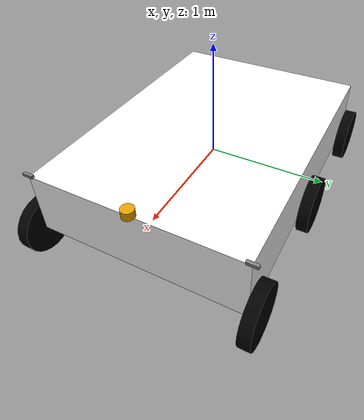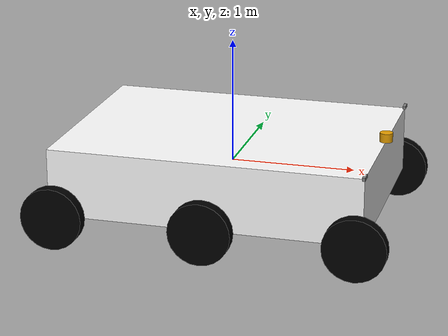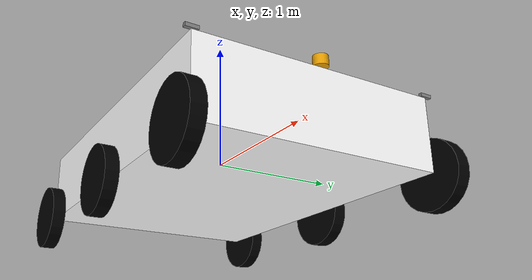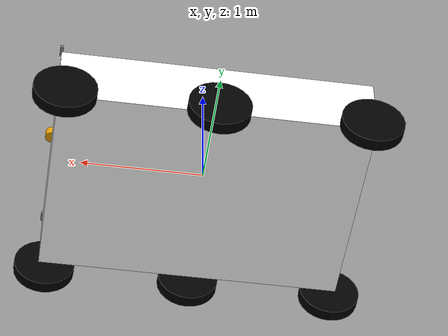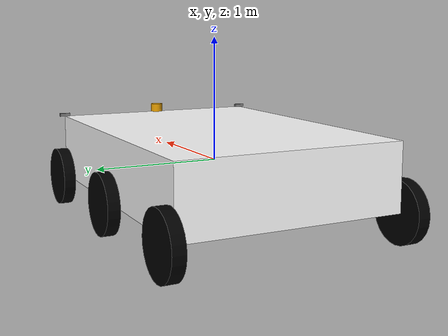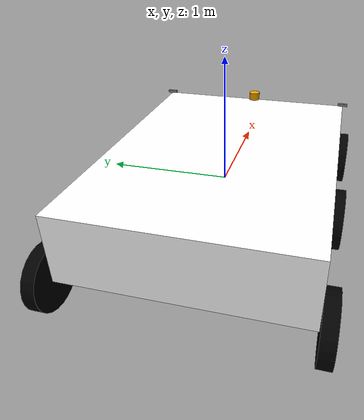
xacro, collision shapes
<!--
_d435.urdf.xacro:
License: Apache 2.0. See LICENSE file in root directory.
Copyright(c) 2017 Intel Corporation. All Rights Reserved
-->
<?xml version="1.0"?>
<robot xmlns:xacro="http://www.ros.org/wiki/xacro" name="delybot">

    <!-- BOX PROPERTIES -->
    <xacro:property name="box_width" value="1.8" />    <xacro:property name="box_depth" value="2.5" />
    <xacro:property name="box_height" value="0.54" />
    <xacro:property name="box_mass" value="42" />       <!-- original: 42 kg-->

    <!-- WHEEL PROPERTIES -->
    <xacro:property name="wheel_radius" value="0.25" />
    <xacro:property name="wheel_width" value="0.1" />
    <xacro:property name="wheel_offset_from_bottom_chassis" value="0.0" />
    <xacro:property name="wheel_offset_from_front_chassis" value="0.05" />
    <xacro:property name="wheel_offset_from_back_chassis" value="0.05" />
    <xacro:property name="wheel_mass" value="0.5" />    <!-- original: 0.5 kg-->

    <!-- MACRO DEFINITION -->

    <!-- DEFAULT INERTIA MACRO -->
    <xacro:macro name="default_inertial" params="mass">
        <inertial>
            <mass value="${mass}" />
            <inertia ixx="1.0" ixy="0.0" ixz="0.0" iyy="1.0" iyz="0.0" izz="1.0" />
        </inertial>
    </xacro:macro>

    <xacro:macro name="box_inertial" params="x y z mass">
        <inertial>
            <mass value="${mass}" />
            <origin xyz="0 0 0" />
            <inertia ixx="${0.0833333 * mass * (y*y + z*z)}" ixy="0.0" ixz="0.0"
                    iyy="${0.0833333 * mass * (x*x + z*z)}" iyz="0.0"
                    izz="${0.0833333 * mass * (x*x + y*y)}" />
        </inertial>
    </xacro:macro>

    <xacro:macro name="cylinder_inertial" params="radius length mass">
        <inertial>
        <mass value="${mass}" />
        <origin xyz="0 0 0"/>
        <inertia ixx="${0.0833333 * mass * (3 * radius * radius + length * length)}" ixy="0.0" ixz="0.0"
                iyy="${0.0833333 * mass * (3 * radius * radius + length * length)}" iyz="0.0"
                izz="${0.5 * mass * radius * radius}" />
        </inertial>

    </xacro:macro>

    <!-- WHEEL MACRO -->
    <xacro:macro name="wheel_macro" params="position x y actuated:=false">
        <link name="${position}_wheel">
            <visual>
                <material name="black"/>
                <origin xyz="0.0 0.0 0.0" rpy="1.57075 0.0 0.0"/>
                <geometry>
                    <cylinder radius="${wheel_radius}" length="${wheel_width}"/>
                </geometry>
            </visual>
            <collision>
                <origin xyz="0.0 0.0 0.0" rpy="1.57075 0.0 0.0"/>
                <geometry>
                    <cylinder radius="${wheel_radius}" length="${wheel_width}"/>
                </geometry>
            </collision>
            <xacro:cylinder_inertial radius="${wheel_radius}" length="${wheel_width}" mass="${wheel_mass}"/>
        </link>

        <gazebo reference="${position}_wheel">
            <kp value="1000000.0" />
            <kd value="1.0" />
            <selfCollide>true</selfCollide>
        </gazebo>

        <!-- JOINT DEFINITION -->

        <joint name="${position}_wheel_joint" type="continuous">
            <origin xyz="${x} ${y} -${box_height/2 - wheel_offset_from_bottom_chassis}" rpy="0.0 0.0 0.0"/>
            <parent link="base_box"/>
            <child link="${position}_wheel"/>
            <axis xyz="0.0 1.0 0.0"/>
        </joint>

        <gazebo reference="${position}_wheel">
            <material>Gazebo/FlatBlack</material>
        </gazebo>

        <!-- TRASMISSION DEFINITION -->

        <transmission name="${position}_wheel_joint_tran" type="SimpleTransmission">
            <type>transmission_interface/SimpleTransmission</type>
            <joint name="${position}_wheel_joint">
                <hardwareInterface>hardware_interface/VelocityJointInterface</hardwareInterface>
            </joint>
            <xacro:if value="true">
                <actuator name="${position}_wheel_joint_motor">
                    <hardwareInterface>hardware_interface/EffortJointInterface</hardwareInterface>
                    <mechanicalReduction>1</mechanicalReduction>
                </actuator>
            </xacro:if>
        </transmission>

    </xacro:macro>

    <!-- MATERIAL DEFINITIONS -->

    <material name="black">
        <color rgba="0.0 0.0 0.0 1.0"/>
    </material>

    <material name="white">
        <color rgba="1.0 1.0 1.0 1.0"/>
    </material>

    <!-- BASE LINK -->

    <link name="base_link"/>

    <!-- BASE BOX -->

    <link name="base_box">
        <visual>
            <material name="white"/>
            <geometry>
                <box size="${box_depth} ${box_width} ${box_height}"/>
            </geometry>
        </visual>
        <collision>
            <geometry>
                <box size="${box_depth} ${box_width} ${box_height}"/>
            </geometry>
        </collision>
        <xacro:box_inertial x="${box_depth}" y="${box_width}" z="${box_height}" mass="${box_mass}"/>
    </link>

    <gazebo reference="base_box">
        <material>Gazebo/Orange</material>
    </gazebo>

    <!-- BOX - BASE JOINT -->

    <joint name="box_to_base_link_joint" type="fixed">
        <parent link="base_link"/>
        <child link="base_box"/>
    </joint>

    <!-- LEFT FRONT WHEEL -->

    <xacro:wheel_macro position="left_front" x="${box_depth/2 - wheel_offset_from_front_chassis}" y="${box_width/2 + wheel_width/2}" actuated="true"/>

    <!-- LEFT CENTER WHEEL -->

    <xacro:wheel_macro position="left_center" x="0" y="${box_width/2 + wheel_width/2}"/>

    <!-- LEFT BACK WHEEL -->

    <xacro:wheel_macro position="left_back" x="${-box_depth/2 + wheel_offset_from_front_chassis}" y="${box_width/2 + wheel_width/2}" actuated="true"/>

    <!-- RIGHT FRONT WHEEL -->

    <xacro:wheel_macro position="right_front" x="${box_depth/2 - wheel_offset_from_front_chassis}" y="${-box_width/2 - wheel_width/2}" actuated="true"/>

    <!-- RIGHT CENTER WHEEL -->

    <xacro:wheel_macro position="right_center" x="0" y="${-box_width/2 - wheel_width/2}"/>

    <!-- RIGHT BACK WHEEL -->

    <xacro:wheel_macro position="right_back" x="${-box_depth/2 + wheel_offset_from_front_chassis}" y="${-box_width/2 - wheel_width/2}" actuated="true"/>

    <!-- LIDAR SENSOR -->

   	<xacro:include filename="$(find delybot_description)/urdf/VLP-16.urdf.xacro"/>
  <xacro:VLP-16 parent="base_link" name="velodyne" topic="/velodyne_points" hz="10" samples="440" gpu="false">
    <origin xyz="1.25 0 0.27" rpy="0 0 0" />  </xacro:VLP-16>
    <!-- IMU SENSOR -->

    <!-- GAZEBO PLUGIN -->

    <!-- ROS CONTROL PLUGIN -->

    <gazebo>
        <plugin name="gazebo_ros_control" filename="libgazebo_ros_control.so">
            <robotNamespace>/</robotNamespace>
        </plugin>
    </gazebo>

    <!-- LIDAR SENSOR PLUGIN -->

<xacro:include filename="$(find delybot_description)/urdf/_d435.urdf.xacro" />
<xacro:sensor_d435 name="camera" topics_ns="camera" parent="base_link" publish_pointcloud="true">
    <origin xyz="1.25 0.9 0.27" rpy="0 0 0" />  </xacro:sensor_d435>

    <xacro:include filename="$(find delybot_description)/urdf/_d435.urdf.xacro" />
<xacro:sensor_d435 name="camera1" topics_ns="camera1" parent="base_link" publish_pointcloud="true">
    <origin xyz="1.25 -0.9 0.27" rpy="0 0 0" />  </xacro:sensor_d435>

    <!-- IMU PLUGIN -->

<plugin name="joint_state_publisher" filename="libgazebo_ros_joint_state_publisher.so">
  <jointName>left_front_wheel_joint, left_center_wheel_joint, left_back_wheel_joint , right_front_wheel_joint , right_center_wheel_joint,right_back_wheel_joint</jointName>
</plugin>

</robot>

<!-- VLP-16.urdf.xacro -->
<robot xmlns:xacro="http://www.ros.org/wiki/xacro" name="VLP-16">
  <xacro:property name="M_PI" value="1.55" />
  <xacro:macro name="VLP-16" params="*origin parent:=base_link name:=velodyne topic:=/velodyne_points hz:=10 lasers:=16 samples:=1875 collision_range:=0.3 min_range:=0.9 max_range:=130.0 noise:=0.008 min_angle:=-${M_PI} max_angle:=${M_PI} gpu:=false">

    <joint name="${name}_base_mount_joint" type="fixed">
      <xacro:insert_block name="origin" />
      <parent link="${parent}"/>
      <child link="${name}_base_link"/>
    </joint>

    <link name="${name}_base_link">
      <inertial>
        <mass value="0.83"/>
        <origin xyz="0 0 0.03585"/>
        <inertia ixx="${(0.83 * (3.0*0.0516*0.0516 + 0.0717*0.0717)) / 12.0}" ixy="0" ixz="0"
          iyy="${(0.83 * (3.0*0.0516*0.0516 + 0.0717*0.0717)) / 12.0}" iyz="0"
          izz="${0.5 * 0.83 * (0.0516*0.0516)}"/>
      </inertial>
      <visual>
        <geometry>
          <mesh filename="package://velodyne_description/meshes/VLP16_base_1.dae" />
        </geometry>
      </visual>
      <visual>
        <geometry>
          <mesh filename="package://velodyne_description/meshes/VLP16_base_2.dae" />
        </geometry>
      </visual>
      <collision>
        <origin rpy="0 0 0" xyz="0 0 0.03585"/>
        <geometry>
          <cylinder radius="0.0516" length="0.0717"/>
        </geometry>
      </collision>
    </link>

    <joint name="${name}_base_scan_joint" type="fixed" >
      <origin xyz="0 0 0.0377" rpy="0 0 0" />
      <parent link="${name}_base_link" />
      <child link="${name}"/>
    </joint>

    <link name="${name}">
      <inertial>
        <mass value="0.01"/>
        <origin xyz="0 0 0"/>
        <inertia ixx="1e-7" ixy="0" ixz="0" iyy="1e-7" iyz="0" izz="1e-7"/>
      </inertial>
      <visual>
        <origin xyz="0 0 -0.0377" />
        <geometry>
          <mesh filename="package://velodyne_description/meshes/VLP16_scan.dae" />
        </geometry>
      </visual>
    </link>

    <!-- Gazebo requires the velodyne_gazebo_plugins package -->
    <gazebo reference="${name}">
      <xacro:if value="${gpu}">
        <sensor type="gpu_ray" name="${name}-VLP16">
          <pose>0 0 0 0 0 0</pose>
          <visualize>false</visualize>
          <update_rate>${hz}</update_rate>
          <ray>
            <scan>
              <horizontal>
                <samples>${samples}</samples>
                <resolution>1</resolution>
                <min_angle>${min_angle}</min_angle>
                <max_angle>${max_angle}</max_angle>
              </horizontal>
              <vertical>
                <samples>${lasers}</samples>
                <resolution>1</resolution>
                <min_angle>-${15.0*M_PI/180.0}</min_angle>
                <max_angle> ${15.0*M_PI/180.0}</max_angle>
              </vertical>
            </scan>
            <range>
              <min>${collision_range}</min>
              <max>${max_range+1}</max>
              <resolution>0.001</resolution>
            </range>
            <noise>
              <type>gaussian</type>
              <mean>0.0</mean>
              <stddev>0.0</stddev>
            </noise>
          </ray>
          <plugin name="gazebo_ros_laser_controller" filename="libgazebo_ros_velodyne_gpu_laser.so">
            <topicName>${topic}</topicName>
            <frameName>${name}</frameName>
            <min_range>${min_range}</min_range>
            <max_range>${max_range}</max_range>
            <gaussianNoise>${noise}</gaussianNoise>
          </plugin>
        </sensor>
      </xacro:if>
      <xacro:unless value="${gpu}">
        <sensor type="ray" name="${name}-VLP16">
          <pose>0 0 0 0 0 0</pose>
          <visualize>false</visualize>
          <update_rate>${hz}</update_rate>
          <ray>
            <scan>
              <horizontal>
                <samples>${samples}</samples>
                <resolution>1</resolution>
                <min_angle>${min_angle}</min_angle>
                <max_angle>${max_angle}</max_angle>
              </horizontal>
              <vertical>
                <samples>${lasers}</samples>
                <resolution>1</resolution>
                <min_angle>-${15.0*M_PI/180.0}</min_angle>
                <max_angle> ${15.0*M_PI/180.0}</max_angle>
              </vertical>
            </scan>
            <range>
              <min>${collision_range}</min>
              <max>${max_range+1}</max>
              <resolution>0.001</resolution>
            </range>
            <noise>
              <type>gaussian</type>
              <mean>0.0</mean>
              <stddev>0.0</stddev>
            </noise>
          </ray>
          <plugin name="gazebo_ros_laser_controller" filename="libgazebo_ros_velodyne_laser.so">
            <topicName>${topic}</topicName>
            <frameName>${name}</frameName>
            <min_range>${min_range}</min_range>
            <max_range>${max_range}</max_range>
            <gaussianNoise>${noise}</gaussianNoise>
          </plugin>
        </sensor>
      </xacro:unless>
    </gazebo>

  </xacro:macro>
</robot>

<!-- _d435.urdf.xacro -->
<robot name="sensor_d435" xmlns:xacro="http://ros.org/wiki/xacro">
  <!--File includes-->
  <xacro:include filename="$(find delybot_description)/urdf/_d435.gazebo.xacro"/>

  <xacro:macro name="sensor_d435" params="name:=camera topics_ns:=camera parent *origin publish_pointcloud:=true">
    <xacro:property name="M_PI" value="3.1415926535897931" />

    <!-- The following values are approximate, and the camera node
     publishing TF values with actual calibrated camera extrinsic values -->
    <xacro:property name="d435_cam_depth_to_left_ir_offset" value="0.0"/>
    <xacro:property name="d435_cam_depth_to_right_ir_offset" value="-0.050"/>
    <xacro:property name="d435_cam_depth_to_color_offset" value="0.015"/>

    <!-- The following values model the aluminum peripherial case for the
    D435 camera, with the camera joint represented by the actual
    peripherial camera tripod mount -->
    <xacro:property name="d435_cam_width" value="0.090"/>
    <xacro:property name="d435_cam_height" value="0.025"/>
    <xacro:property name="d435_cam_depth" value="0.02505"/>
    <xacro:property name="d435_cam_mount_from_center_offset" value="0.0149"/>

    <!-- The following offset is relative the the physical D435 camera peripherial
    camera tripod mount -->
    <xacro:property name="d435_cam_depth_px" value="${d435_cam_mount_from_center_offset}"/>
    <xacro:property name="d435_cam_depth_py" value="0.0175"/>
    <xacro:property name="d435_cam_depth_pz" value="${d435_cam_height/2}"/>

    <material name="${name}_aluminum">
    <color rgba="0.5 0.5 0.5 1"/>
    </material>

    <!-- camera body, with origin at bottom screw mount -->
    <joint name="${name}_joint" type="fixed">
      <xacro:insert_block name="origin" />
      <parent link="${parent}"/>
      <child link="${name}_bottom_screw_frame" />
    </joint>
    <link name="${name}_bottom_screw_frame"/>

    <joint name="${name}_link_joint" type="fixed">
      <origin xyz="0 ${d435_cam_depth_py} ${d435_cam_depth_pz}" rpy="0 0 0"/>
      <parent link="${name}_bottom_screw_frame"/>
      <child link="${name}_link" />
    </joint>

    <link name="${name}_link">
      <visual>
      <origin xyz="${d435_cam_mount_from_center_offset} ${-d435_cam_depth_py} 0" rpy="${M_PI/2} 0 ${M_PI/2}"/>
        <geometry>
          <mesh filename="package://realsense2_description/meshes/d435.dae" />
        </geometry>
        <material name="${name}_aluminum"/>
      </visual>
      <collision>
        <origin xyz="0 ${-d435_cam_depth_py} 0" rpy="0 0 0"/>
        <geometry>
        <box size="${d435_cam_depth} ${d435_cam_width} ${d435_cam_height}"/>
        </geometry>
      </collision>
      <inertial>
        <!-- The following are not reliable values, and should not be used for modeling -->
        <mass value="0.564" />
        <origin xyz="0 0 0" />
        <inertia ixx="0.003881243" ixy="0.0" ixz="0.0" iyy="0.000498940" iyz="0.0" izz="0.003879257" />
      </inertial>
    </link>

    <!-- camera depth joints and links -->
    <joint name="${name}_depth_joint" type="fixed">
      <origin xyz="0 0 0" rpy="0 0 0"/>
      <parent link="${name}_link"/>
      <child link="${name}_depth_frame" />
    </joint>
    <link name="${name}_depth_frame"/>

    <joint name="${name}_depth_optical_joint" type="fixed">
      <origin xyz="0 0 0" rpy="${-M_PI/2} 0 ${-M_PI/2}" />
      <parent link="${name}_depth_frame" />
      <child link="${name}_depth_optical_frame" />
    </joint>
    <link name="${name}_depth_optical_frame"/>

    <!-- camera left IR joints and links -->
    <joint name="${name}_left_ir_joint" type="fixed">
      <origin xyz="0 ${d435_cam_depth_to_left_ir_offset} 0" rpy="0 0 0" />
      <parent link="${name}_depth_frame" />
      <child link="${name}_left_ir_frame" />
    </joint>
    <link name="${name}_left_ir_frame"/>

    <joint name="${name}_left_ir_optical_joint" type="fixed">
      <origin xyz="0 0 0" rpy="${-M_PI/2} 0 ${-M_PI/2}" />
      <parent link="${name}_left_ir_frame" />
      <child link="${name}_left_ir_optical_frame" />
    </joint>
    <link name="${name}_left_ir_optical_frame"/>

    <!-- camera right IR joints and links -->
    <joint name="${name}_right_ir_joint" type="fixed">
      <origin xyz="0 ${d435_cam_depth_to_right_ir_offset} 0" rpy="0 0 0" />
      <parent link="${name}_depth_frame" />
      <child link="${name}_right_ir_frame" />
    </joint>
    <link name="${name}_right_ir_frame"/>

    <joint name="${name}_right_ir_optical_joint" type="fixed">
      <origin xyz="0 0 0" rpy="${-M_PI/2} 0 ${-M_PI/2}" />
      <parent link="${name}_right_ir_frame" />
      <child link="${name}_right_ir_optical_frame" />
    </joint>
    <link name="${name}_right_ir_optical_frame"/>

    <!-- camera color joints and links -->
    <joint name="${name}_color_joint" type="fixed">
      <origin xyz="0 ${d435_cam_depth_to_color_offset} 0" rpy="0 0 0" />
      <parent link="${name}_depth_frame" />
      <child link="${name}_color_frame" />
    </joint>
    <link name="${name}_color_frame"/>

    <joint name="${name}_color_optical_joint" type="fixed">
      <origin xyz="0 0 0" rpy="${-M_PI/2} 0 ${-M_PI/2}" />
      <parent link="${name}_color_frame" />
      <child link="${name}_color_optical_frame" />
    </joint>
    <link name="${name}_color_optical_frame"/>

    <!-- Realsense Gazebo Plugin -->
    <xacro:gazebo_d435 camera_name="${name}" reference_link="${name}_link" topics_ns="${topics_ns}" depth_optical_frame="${name}_depth_optical_frame" color_optical_frame="${name}_color_optical_frame" infrared1_optical_frame="${name}_left_ir_optical_frame" infrared2_optical_frame="${name}_right_ir_optical_frame" publish_pointcloud="${publish_pointcloud}"/>

  </xacro:macro>
</robot>
